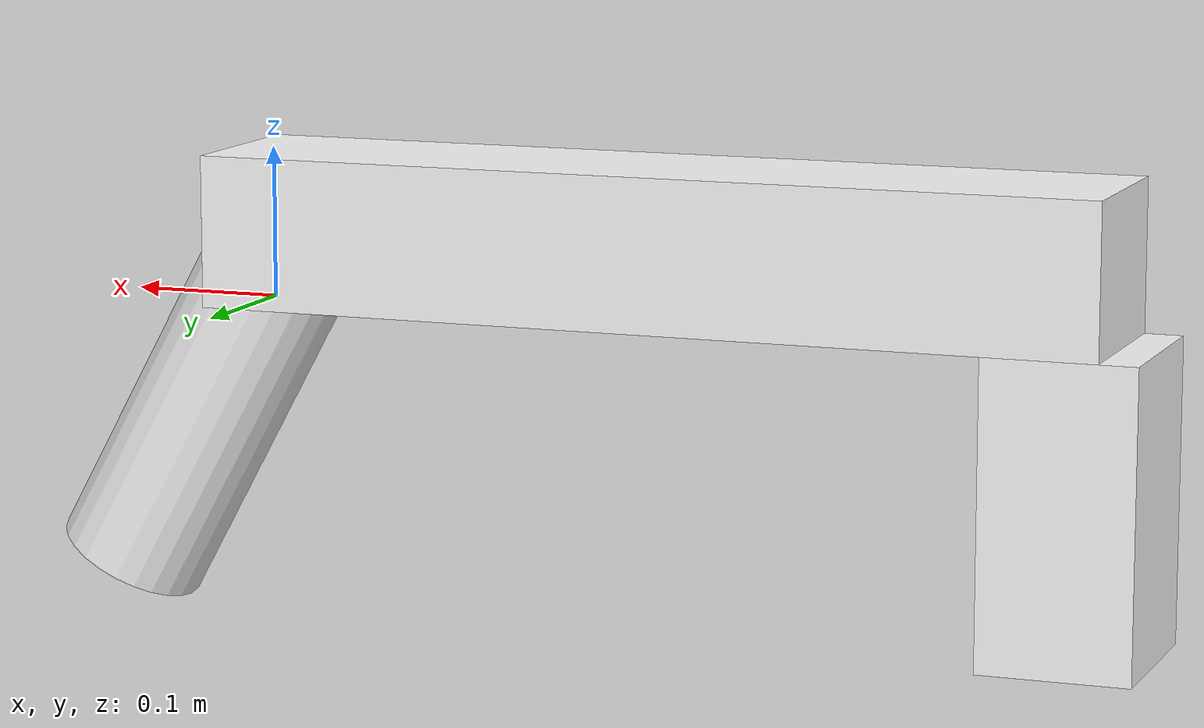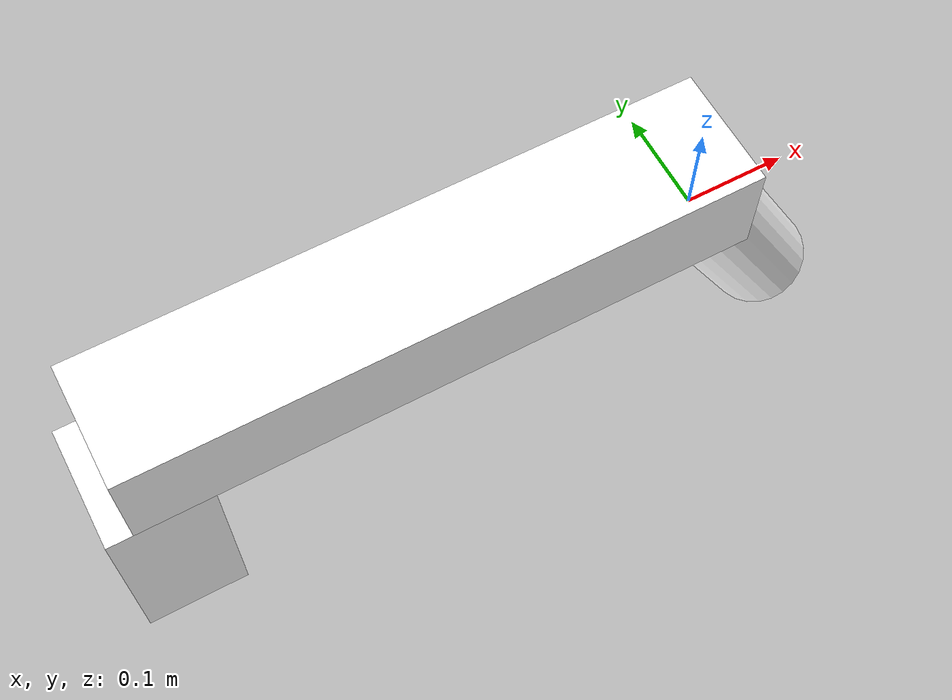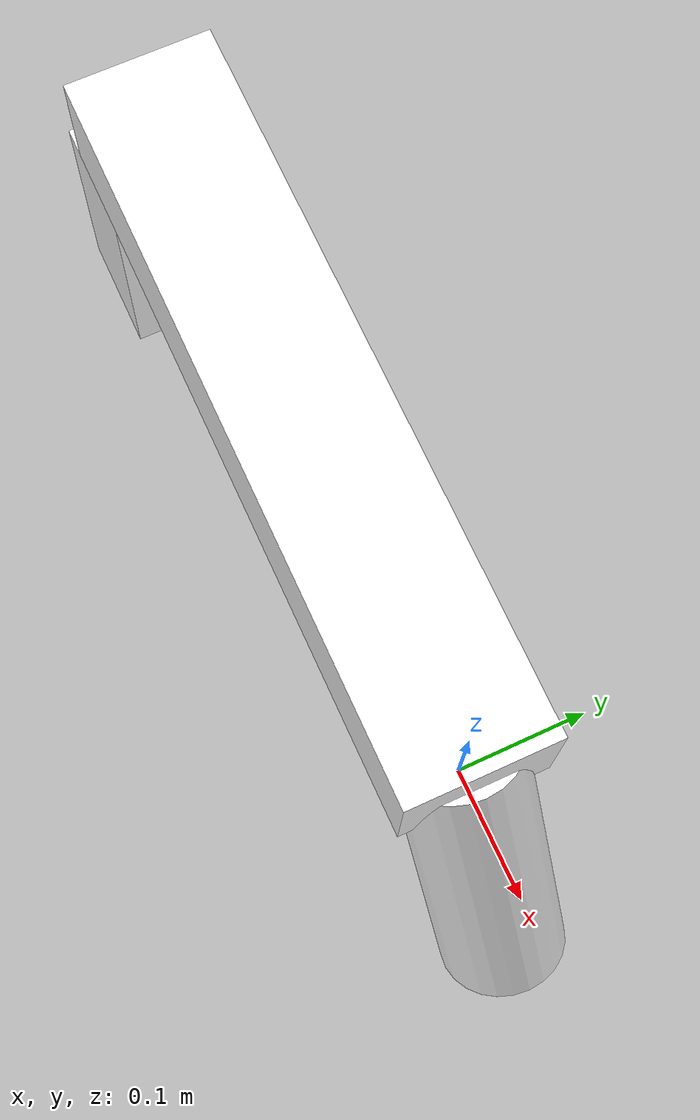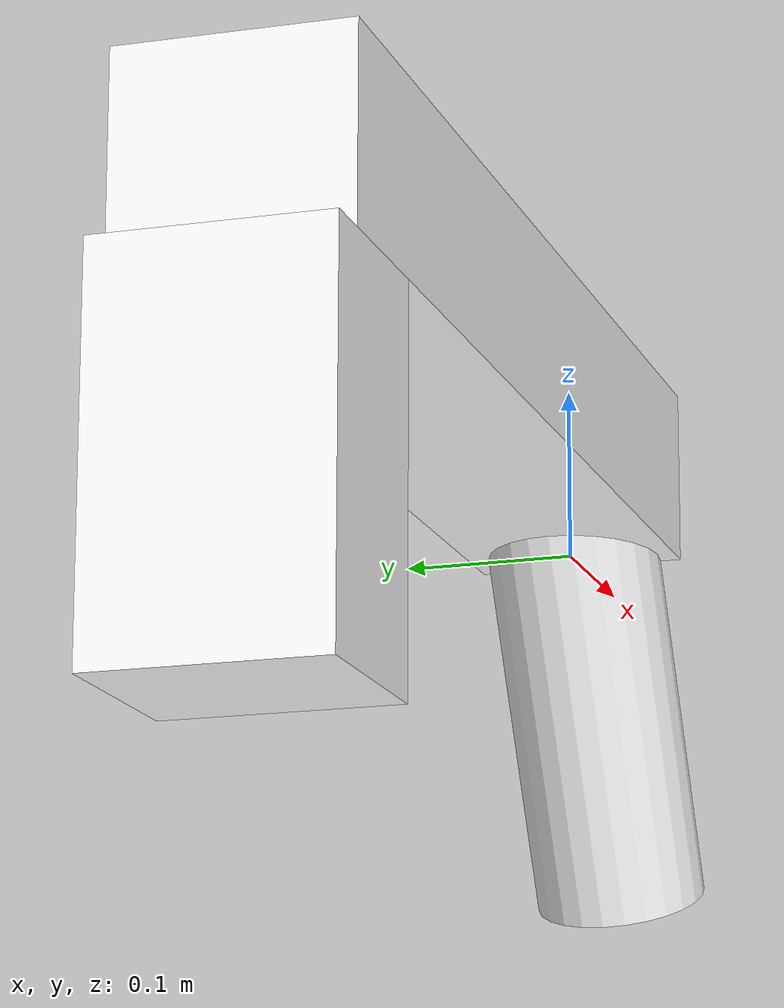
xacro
<?xml version="1.0"?>
<robot xmlns:xacro="http://www.ros.org/wiki/xacro">

    <xacro:include filename="inertial_macros.xacro" />
    <material name="white">
        <color rgba="1 1 1 1" />
    </material>

        <material name="orange">
        <color rgba="1 0.3 0.1 1" />
    </material>

        <material name="blue">
        <color rgba="0.2 0.2 1 1" />
    </material>

        <material name="black">
        <color rgba="0 0 0 1" />
    </material>
    <!-- Base Link -->
    <link name= "base_link">

    </link>

    <!-- Chassis Link -->
    <joint name="chassis_joint" type="fixed">
        <parent link="base_link" />
        <child link="chassis"/>
        <origin xyz ="-0.55 0 0"/>
    </joint>

    <link name="chassis">
        <visual>
        <origin xyz="0.275 0 0.05" />
            <geometry>
                <box size="0.6 0.12 0.1"/>
            </geometry>
            <material name="white"/>
        </visual>
    </link>

    <!-- Back chassis-->
    <joint name="back-wheel-chassis_joint" type="fixed">
        <parent link="chassis" />
        <child link="back-wheel-chassis"/>
        <origin xyz ="0 0 -0.2"/>
    </joint>
    <link name="back-wheel-chassis">
        <visual>
        <origin xyz="0 0 0.1" />
            <geometry>
                <box size="0.1 0.12 0.2"/>
            </geometry>
            <material name="white"/>
        </visual>
    </link>

    <!-- left back wheel link-->
    <joint name="left-back-wheel-chassis_joint" type="continuous">
        <parent link="back-wheel-chassis" />
        <child link="left-back-wheel-chassis"/>
        <origin xyz ="0 0.1 0" rpy="-${pi/2} 0 0"/>
        <axis xyz="0 0 1" />
    </joint>
    <link name="left-back-wheel-chassis">
        <collision>
        <origin xyz="0 0 0" />
            <geometry>
                <cylinder radius="0.05" length="0.04"/>
            </geometry>
        </collision>
        <xacro:inertial_cylinder mass="0.05" length="0.04" radius="0.05">
            <origin xyz="0 0 0" rpy="0 0 0"/>
        </xacro:inertial_cylinder>
    </link>

    <!-- right back wheel link-->
    <joint name="right-back-wheel-chassis_joint" type="continuous">
        <parent link="back-wheel-chassis" />
        <child link="right-back-wheel-chassis"/>
        <origin xyz ="0 -0.1 0" rpy="-${pi/2} 0 0"/>
        <axis xyz="0 0 1" />
    </joint>
    <link name="right-back-wheel-chassis">
        <collision>
        <origin xyz="0 0 0" />
            <geometry>
                <cylinder radius="0.05" length="0.04"/>
            </geometry>
        </collision>
        <xacro:inertial_cylinder mass="0.05" length="0.04" radius="0.05">
            <origin xyz="0 0 0" rpy="0 0 0"/>
        </xacro:inertial_cylinder>
    </link>

    <!-- Front Wheel Link-->
    <joint name="fork-chassis-joint" type="revolute">
        <parent link="base_link" />
        <child link="front-wheel-driver-link" />
        <origin xyz="0 0 0.05" />
        <axis xyz="0 0 1" />
        <limit lower="-0.524" upper="0.524" effort="1" velocity="0.2"/>
    </joint>
    <link name="front-wheel-driver-link">
        <visual>
        <origin xyz="0.05 0 -0.125" rpy="0 -0.5 0"/>
            <geometry>
                <cylinder radius="0.05" length="0.25" />
            </geometry>
            <material name="white"/>
        </visual>
    </link>

    <!-- Front Wheel Fork -->
    <joint name="front-wheel-joint" type="fixed">
        <parent link="front-wheel-driver-link" />
        <child link="front-wheel-fork"/>
        <origin xyz ="0.125 0 -0.25" rpy="${-pi/2} 0.5 0"/>
        <axis xyz="0 0 1" />
    </joint>
    <link name="front-wheel-fork">
        <collision>
        <origin xyz="0 0 0" />
            <geometry>
                <sphere radius="0.05"/>
            </geometry>
        </collision>
        <xacro:inertial_sphere mass="0.05" radius="0.05">
            <origin xyz="0 0 0" rpy="0 0 0"/>
        </xacro:inertial_sphere>
    </link>

</robot>
